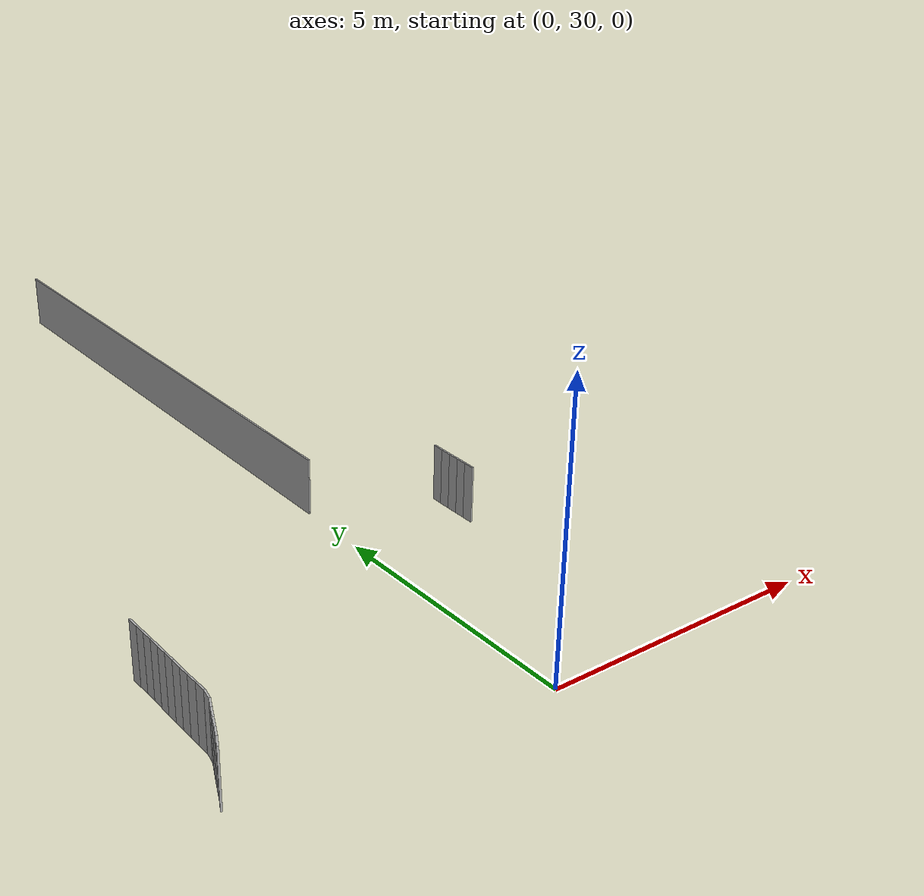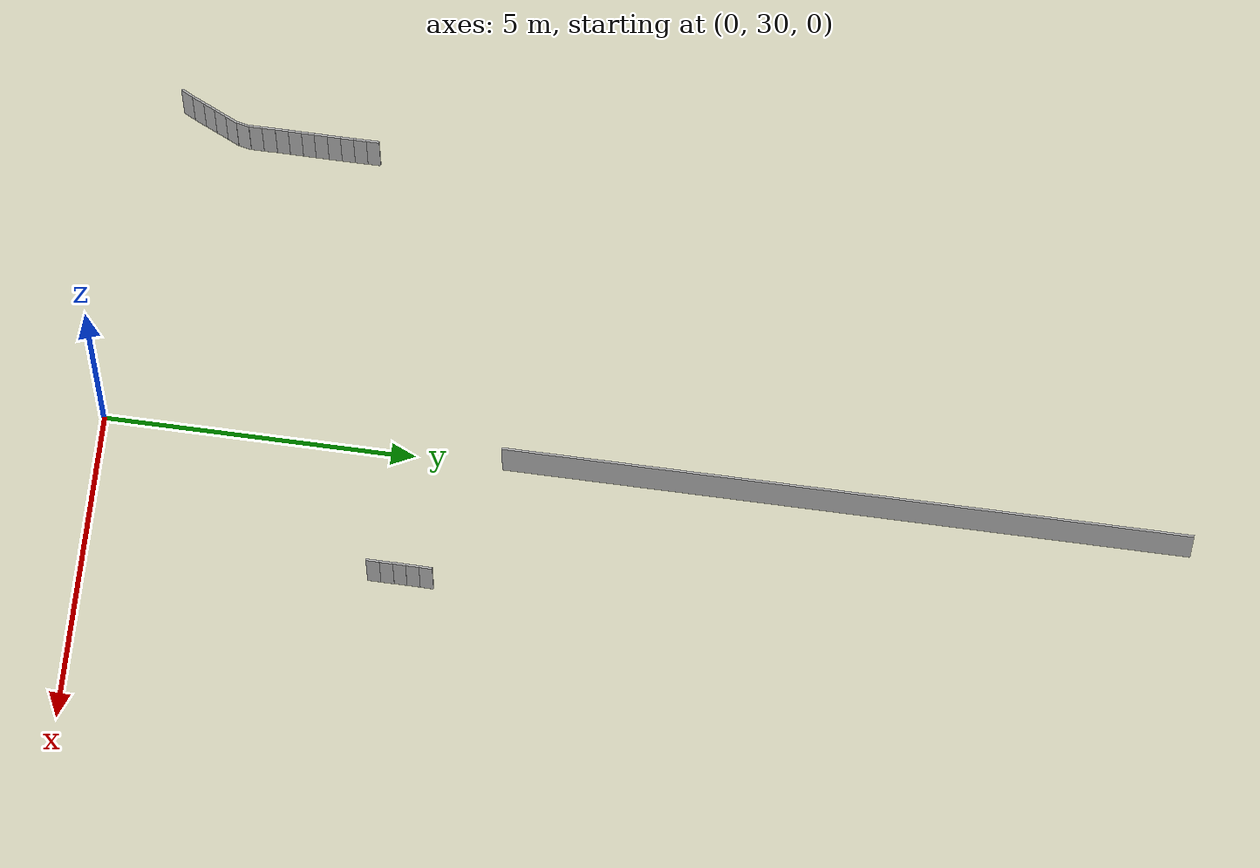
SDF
<sdf version="1.4">
 <world name="default">
  <model name="lattice_327">
   <static>1</static>
   <link name="link">
    <collision name="collision">
     <pose>0.02 0.105 0.525 0 -0 0</pose>
     <geometry><box><size>0.04 0.21 1.05</size></box></geometry>
    </collision>
    <visual name="visual"><geometry><mesh><uri>model://lattice/meshes/lattice.dae</uri></mesh></geometry></visual>
    <velocity_decay><linear>0</linear><angular>0</angular></velocity_decay>
   </link>
   <pose>-5.01083 31.0666 0 0 -0 2.71998</pose>
  </model>
  <model name="lattice_328">
   <static>1</static>
   <link name="link">
    <collision name="collision">
     <pose>0.02 0.105 0.525 0 -0 0</pose>
     <geometry><box><size>0.04 0.21 1.05</size></box></geometry>
    </collision>
    <visual name="visual"><geometry><mesh><uri>model://lattice/meshes/lattice.dae</uri></mesh></geometry></visual>
    <velocity_decay><linear>0</linear><angular>0</angular></velocity_decay>
   </link>
   <pose>-4.92289 31.2598 0 0 -0 2.71825</pose>
  </model>
  <model name="lattice_329">
   <static>1</static>
   <link name="link">
    <collision name="collision">
     <pose>0.02 0.105 0.525 0 -0 0</pose>
     <geometry><box><size>0.04 0.21 1.05</size></box></geometry>
    </collision>
    <visual name="visual"><geometry><mesh><uri>model://lattice/meshes/lattice.dae</uri></mesh></geometry></visual>
    <velocity_decay><linear>0</linear><angular>0</angular></velocity_decay>
   </link>
   <pose>-5.09388 30.8803 0 0 -0 2.71992</pose>
  </model>
  <model name="lattice_330">
   <static>1</static>
   <link name="link">
    <collision name="collision">
     <pose>0.02 0.105 0.525 0 -0 0</pose>
     <geometry><box><size>0.04 0.21 1.05</size></box></geometry>
    </collision>
    <visual name="visual"><geometry><mesh><uri>model://lattice/meshes/lattice.dae</uri></mesh></geometry></visual>
    <velocity_decay><linear>0</linear><angular>0</angular></velocity_decay>
   </link>
   <pose>-5.18209 30.6863 0 0 -0 2.67393</pose>
  </model>
  <model name="lattice_331">
   <static>1</static>
   <link name="link">
    <collision name="collision">
     <pose>0.02 0.105 0.525 0 -0 0</pose>
     <geometry><box><size>0.04 0.21 1.05</size></box></geometry>
    </collision>
    <visual name="visual"><geometry><mesh><uri>model://lattice/meshes/lattice.dae</uri></mesh></geometry></visual>
    <velocity_decay><linear>0</linear><angular>0</angular></velocity_decay>
   </link>
   <pose>-4.83725 31.4464 0 0 -0 2.71038</pose>
  </model>
  <model name="lattice_332">
   <static>1</static>
   <link name="link">
    <collision name="collision">
     <pose>0.02 0.105 0.525 0 -0 0</pose>
     <geometry><box><size>0.04 0.21 1.05</size></box></geometry>
    </collision>
    <visual name="visual"><geometry><mesh><uri>model://lattice/meshes/lattice.dae</uri></mesh></geometry></visual>
    <velocity_decay><linear>0</linear><angular>0</angular></velocity_decay>
   </link>
   <pose>-4.79657 31.6543 0 0 -0 2.93662</pose>
  </model>
  <model name="lattice_333">
   <static>1</static>
   <link name="link">
    <collision name="collision">
     <pose>0.02 0.105 0.525 0 -0 0</pose>
     <geometry><box><size>0.04 0.21 1.05</size></box></geometry>
    </collision>
    <visual name="visual"><geometry><mesh><uri>model://lattice/meshes/lattice.dae</uri></mesh></geometry></visual>
    <velocity_decay><linear>0</linear><angular>0</angular></velocity_decay>
   </link>
   <pose>-4.8329 32.0859 0 0 -0 0</pose>
  </model>
  <model name="lattice_334">
   <static>1</static>
   <link name="link">
    <collision name="collision">
     <pose>0.02 0.105 0.525 0 -0 0</pose>
     <geometry><box><size>0.04 0.21 1.05</size></box></geometry>
    </collision>
    <visual name="visual"><geometry><mesh><uri>model://lattice/meshes/lattice.dae</uri></mesh></geometry></visual>
    <velocity_decay><linear>0</linear><angular>0</angular></velocity_decay>
   </link>
   <pose>-4.83071 32.2955 0 0 -0 0</pose>
  </model>
  <model name="lattice_335">
   <static>1</static>
   <link name="link">
    <collision name="collision">
     <pose>0.02 0.105 0.525 0 -0 0</pose>
     <geometry><box><size>0.04 0.21 1.05</size></box></geometry>
    </collision>
    <visual name="visual"><geometry><mesh><uri>model://lattice/meshes/lattice.dae</uri></mesh></geometry></visual>
    <velocity_decay><linear>0</linear><angular>0</angular></velocity_decay>
   </link>
   <pose>-4.82944 31.8709 0 0 -0 0.026252</pose>
  </model>
  <model name="lattice_336">
   <static>1</static>
   <link name="link">
    <collision name="collision">
     <pose>0.02 0.105 0.525 0 -0 0</pose>
     <geometry><box><size>0.04 0.21 1.05</size></box></geometry>
    </collision>
    <visual name="visual"><geometry><mesh><uri>model://lattice/meshes/lattice.dae</uri></mesh></geometry></visual>
    <velocity_decay><linear>0</linear><angular>0</angular></velocity_decay>
   </link>
   <pose>-4.83052 31.658 0 0 -0 0</pose>
  </model>
  <model name="lattice_337">
   <static>1</static>
   <link name="link">
    <collision name="collision">
     <pose>0.02 0.105 0.525 0 -0 0</pose>
     <geometry><box><size>0.04 0.21 1.05</size></box></geometry>
    </collision>
    <visual name="visual"><geometry><mesh><uri>model://lattice/meshes/lattice.dae</uri></mesh></geometry></visual>
    <velocity_decay><linear>0</linear><angular>0</angular></velocity_decay>
   </link>
   <pose>-4.82903 33.55 0 0 -0 0</pose>
  </model>
  <model name="lattice_338">
   <static>1</static>
   <link name="link">
    <collision name="collision">
     <pose>0.02 0.105 0.525 0 -0 0</pose>
     <geometry><box><size>0.04 0.21 1.05</size></box></geometry>
    </collision>
    <visual name="visual"><geometry><mesh><uri>model://lattice/meshes/lattice.dae</uri></mesh></geometry></visual>
    <velocity_decay><linear>0</linear><angular>0</angular></velocity_decay>
   </link>
   <pose>-4.82903 32.5087 0 0 -0 0</pose>
  </model>
  <model name="lattice_339">
   <static>1</static>
   <link name="link">
    <collision name="collision">
     <pose>0.02 0.105 0.525 0 -0 0</pose>
     <geometry><box><size>0.04 0.21 1.05</size></box></geometry>
    </collision>
    <visual name="visual"><geometry><mesh><uri>model://lattice/meshes/lattice.dae</uri></mesh></geometry></visual>
    <velocity_decay><linear>0</linear><angular>0</angular></velocity_decay>
   </link>
   <pose>-4.82716 33.1358 0 0 -0 0</pose>
  </model>
  <model name="lattice_340">
   <static>1</static>
   <link name="link">
    <collision name="collision">
     <pose>0.02 0.105 0.525 0 -0 0</pose>
     <geometry><box><size>0.04 0.21 1.05</size></box></geometry>
    </collision>
    <visual name="visual"><geometry><mesh><uri>model://lattice/meshes/lattice.dae</uri></mesh></geometry></visual>
    <velocity_decay><linear>0</linear><angular>0</angular></velocity_decay>
   </link>
   <pose>-4.82881 32.7127 0 0 -0 0</pose>
  </model>
  <model name="lattice_341">
   <static>1</static>
   <link name="link">
    <collision name="collision">
     <pose>0.02 0.105 0.525 0 -0 0</pose>
     <geometry><box><size>0.04 0.21 1.05</size></box></geometry>
    </collision>
    <visual name="visual"><geometry><mesh><uri>model://lattice/meshes/lattice.dae</uri></mesh></geometry></visual>
    <velocity_decay><linear>0</linear><angular>0</angular></velocity_decay>
   </link>
   <pose>-4.82713 32.9245 0 0 -0 0</pose>
  </model>
  <model name="lattice_342">
   <static>1</static>
   <link name="link">
    <collision name="collision">
     <pose>0.02 0.105 0.525 0 -0 0</pose>
     <geometry><box><size>0.04 0.21 1.05</size></box></geometry>
    </collision>
    <visual name="visual"><geometry><mesh><uri>model://lattice/meshes/lattice.dae</uri></mesh></geometry></visual>
    <velocity_decay><linear>0</linear><angular>0</angular></velocity_decay>
   </link>
   <pose>-4.82765 33.3428 0 0 -0 0</pose>
  </model>
  <model name="lattice_366">
   <static>1</static>
   <link name="link">
    <collision name="collision">
     <pose>0.02 0.105 0.525 0 -0 0</pose>
     <geometry><box><size>0.04 0.21 1.05</size></box></geometry>
    </collision>
    <visual name="visual"><geometry><mesh><uri>model://lattice/meshes/lattice.dae</uri></mesh></geometry></visual>
    <velocity_decay><linear>0</linear><angular>0</angular></velocity_decay>
   </link>
   <pose>2.10347 35.3827 0 0 0 -0.019894</pose>
  </model>
  <model name="lattice_368">
   <static>1</static>
   <link name="link">
    <collision name="collision">
     <pose>0.02 0.105 0.525 0 -0 0</pose>
     <geometry><box><size>0.04 0.21 1.05</size></box></geometry>
    </collision>
    <visual name="visual"><geometry><mesh><uri>model://lattice/meshes/lattice.dae</uri></mesh></geometry></visual>
    <velocity_decay><linear>0</linear><angular>0</angular></velocity_decay>
   </link>
   <pose>2.10258 35.1718 0 0 -0 0</pose>
  </model>
  <model name="lattice_369">
   <static>1</static>
   <link name="link">
    <collision name="collision">
     <pose>0.02 0.105 0.525 0 -0 0</pose>
     <geometry><box><size>0.04 0.21 1.05</size></box></geometry>
    </collision>
    <visual name="visual"><geometry><mesh><uri>model://lattice/meshes/lattice.dae</uri></mesh></geometry></visual>
    <velocity_decay><linear>0</linear><angular>0</angular></velocity_decay>
   </link>
   <pose>2.1012 34.9568 0 0 -0 0</pose>
  </model>
  <model name="lattice_370">
   <static>1</static>
   <link name="link">
    <collision name="collision">
     <pose>0.02 0.105 0.525 0 -0 0</pose>
     <geometry><box><size>0.04 0.21 1.05</size></box></geometry>
    </collision>
    <visual name="visual"><geometry><mesh><uri>model://lattice/meshes/lattice.dae</uri></mesh></geometry></visual>
    <velocity_decay><linear>0</linear><angular>0</angular></velocity_decay>
   </link>
   <pose>2.10094 34.5409 0 0 -0 0</pose>
  </model>
  <model name="lattice_371">
   <static>1</static>
   <link name="link">
    <collision name="collision">
     <pose>0.02 0.105 0.525 0 -0 0</pose>
     <geometry><box><size>0.04 0.21 1.05</size></box></geometry>
    </collision>
    <visual name="visual"><geometry><mesh><uri>model://lattice/meshes/lattice.dae</uri></mesh></geometry></visual>
    <velocity_decay><linear>0</linear><angular>0</angular></velocity_decay>
   </link>
   <pose>2.10243 34.7542 0 0 -0 0</pose>
  </model>
  <model name="lattice_large_13">
   <static>1</static>
   <link name="link">
    <collision name="collision">
     <geometry><mesh><uri>model://lattice_large/meshes/lattice_large.dae</uri></mesh></geometry>
    </collision>
    <visual name="visual">
     <geometry><mesh><uri>model://lattice_large/meshes/lattice_large.dae</uri></mesh></geometry>
    </visual>
    <velocity_decay><linear>0</linear><angular>0</angular></velocity_decay>
   </link>
   <pose>0 47.1767 0 0 -0 0</pose>
  </model>
 </world>
</sdf>
